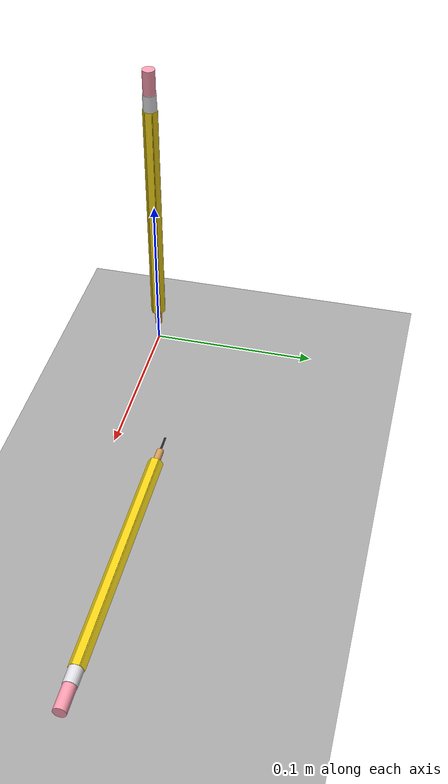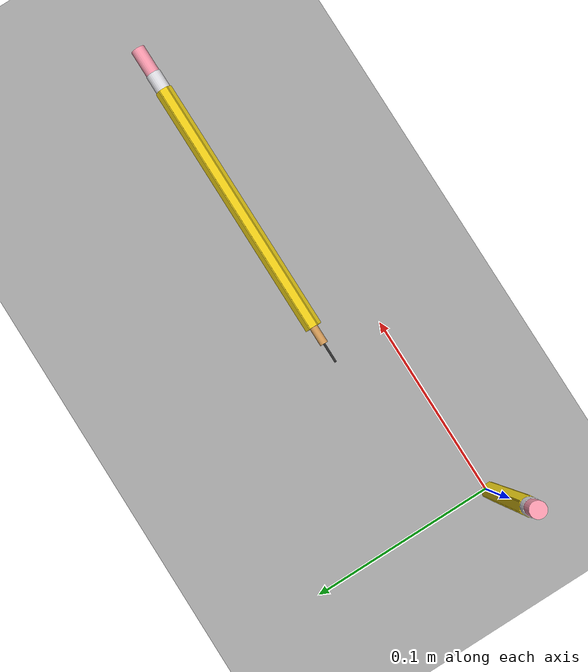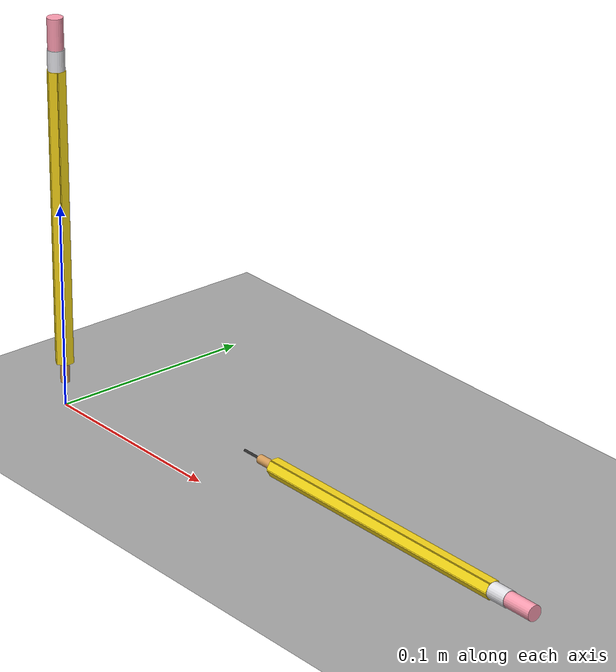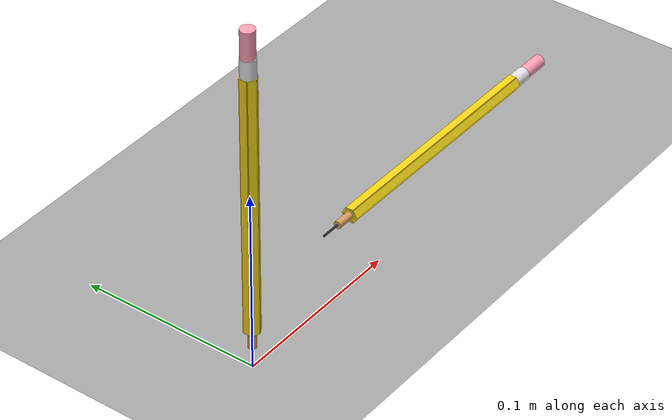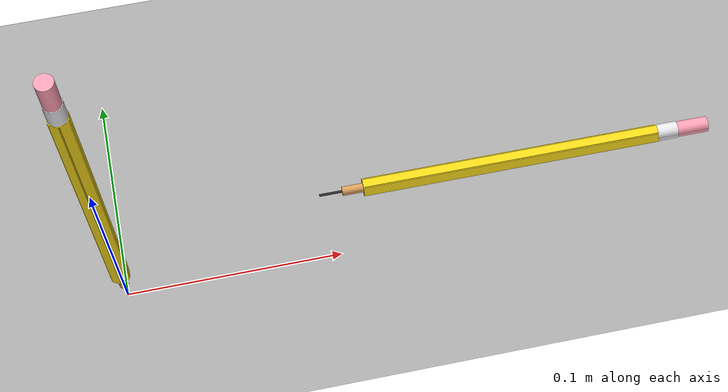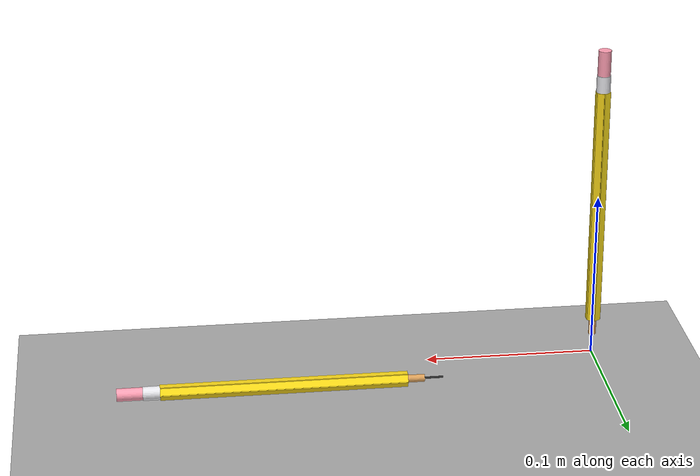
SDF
<?xml version="1.0" ?>
<sdf version="1.9">
  <world name="pencil_world">

    <!-- ── Required system plugins for gz sim ── -->
    <plugin filename="gz-sim-physics-system"
            name="gz::sim::systems::Physics"/>

    <plugin filename="gz-sim-user-commands-system"
            name="gz::sim::systems::UserCommands"/>

    <plugin filename="gz-sim-scene-broadcaster-system"
            name="gz::sim::systems::SceneBroadcaster"/>

    <!-- ── GUI plugins ── -->
    <gui fullscreen="false">
      <plugin filename="MinimalScene" name="3D View">
        <gz-gui>
          <title>3D View</title>
          <property type="bool" key="showTitleBar">false</property>
          <property type="string" key="state">docked</property>
        </gz-gui>
        <engine>ogre2</engine>
        <scene>scene</scene>
        <ambient_light>0.4 0.4 0.4</ambient_light>
        <background_color>0.27 0.27 0.27</background_color>
        <!-- Camera positioned to view a pencil nicely -->
        <camera_pose>0.0 -0.25 0.12 0 0.4 1.5708</camera_pose>
        <camera_clip>
          <near>0.001</near>
          <far>1000</far>
        </camera_clip>
      </plugin>

      <plugin filename="GzSceneManager" name="Scene Manager">
        <gz-gui>
          <property key="resizable" type="bool">false</property>
          <property key="width" type="double">5</property>
          <property key="height" type="double">5</property>
          <property key="state" type="string">floating</property>
          <property key="showTitleBar" type="bool">false</property>
        </gz-gui>
      </plugin>

      <plugin filename="InteractiveViewControl" name="Interactive view control">
        <gz-gui>
          <property key="resizable" type="bool">false</property>
          <property key="width" type="double">5</property>
          <property key="height" type="double">5</property>
          <property key="state" type="string">floating</property>
          <property key="showTitleBar" type="bool">false</property>
        </gz-gui>
      </plugin>

      <plugin filename="EntityContextMenuPlugin" name="Entity context menu">
        <gz-gui>
          <property key="state" type="string">floating</property>
          <property key="width" type="double">5</property>
          <property key="height" type="double">5</property>
          <property key="showTitleBar" type="bool">false</property>
        </gz-gui>
      </plugin>

      <plugin filename="WorldControl" name="World control">
        <gz-gui>
          <title>World control</title>
          <property type="bool" key="showTitleBar">false</property>
          <property type="bool" key="resizable">false</property>
          <property type="double" key="height">72</property>
          <property type="string" key="state">floating</property>
          <property type="bool" key="showCloseButton">false</property>
          <property type="bool" key="showDockButton">false</property>
        </gz-gui>
        <play_pause>true</play_pause>
        <step>true</step>
        <start_paused>true</start_paused>
      </plugin>
    </gui>

    <!-- ── Physics ── -->
    <physics name="1ms" type="ignored">
      <max_step_size>0.001</max_step_size>
      <real_time_factor>1.0</real_time_factor>
    </physics>

    <!-- ── Scene lighting ── -->
    <scene>
      <ambient>0.4 0.4 0.4 1</ambient>
      <background>0.27 0.27 0.27 1</background>
      <shadows>true</shadows>
    </scene>

    <light type="directional" name="sun">
      <cast_shadows>true</cast_shadows>
      <pose>0 0 10 0 0 0</pose>
      <diffuse>0.8 0.8 0.8 1</diffuse>
      <specular>0.4 0.4 0.4 1</specular>
      <direction>-0.5 0.1 -0.9</direction>
      <attenuation>
        <range>1000</range>
        <constant>0.9</constant>
        <linear>0.01</linear>
        <quadratic>0.001</quadratic>
      </attenuation>
    </light>

    <!-- ── Ground plane ── -->
    <model name="ground_plane">
      <static>true</static>
      <link name="link">
        <collision name="collision">
          <geometry>
            <plane><normal>0 0 1</normal><size>100 100</size></plane>
          </geometry>
        </collision>
        <visual name="visual">
          <geometry>
            <plane><normal>0 0 1</normal><size>100 100</size></plane>
          </geometry>
          <material>
            <ambient>0.55 0.55 0.55 1</ambient>
            <diffuse>0.65 0.65 0.65 1</diffuse>
            <specular>0.1 0.1 0.1 1</specular>
          </material>
        </visual>
      </link>
    </model>

    <!-- ── Pencil 1: standing upright, tip resting on ground ── -->
    <include>
      <uri>model://pencil</uri>
      <name>pencil_upright</name>
      <!-- tip at z=0 → raise 1 mm so it sits on the ground cleanly -->
      <pose>0 0 0.001 0 0 0</pose>
    </include>

    <!-- ── Pencil 2: lying on its side along X-axis ── -->
    <include>
      <uri>model://pencil</uri>
      <name>pencil_lying</name>
      <pose>0.095 0.03 0.0040 0 1.5708 0</pose>
    </include>

  </world>
</sdf>

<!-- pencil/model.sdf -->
<sdf version="1.9">
  <model name="pencil">

    <!-- Static prop — change to false for physics simulation -->
    <static>false</static>

    <link name="base_link">
      <pose>0 0 0 0 0 0</pose>

      <inertial>
        <mass>0.01</mass>
        <inertia>
          <ixx>3e-6</ixx><ixy>0</ixy><ixz>0</ixz>
          <iyy>3e-6</iyy><iyz>0</iyz>
          <izz>1e-7</izz>
        </inertia>
      </inertial>

      <!-- ══════════════════════════════════════════
           GRAPHITE TIP  z = 0 → 0.015
           Thin dark-grey cylinder (graphite)
      ══════════════════════════════════════════ -->
      <visual name="tip_graphite">
        <pose>0 0 0.0055 0 0 0</pose>
        <geometry>
          <cylinder>
            <radius>0.0006</radius>
            <length>0.011</length>
          </cylinder>
        </geometry>
        <material>
          <ambient>0.18 0.18 0.18 1</ambient>
          <diffuse>0.18 0.18 0.18 1</diffuse>
          <specular>0.5 0.5 0.5 1</specular>
        </material>
      </visual>

      <!-- ══════════════════════════════════════════
           WOOD SHEATH  z = 0.011 → 0.021
           Slightly wider section — exposed bare wood
      ══════════════════════════════════════════ -->
      <visual name="tip_wood">
        <pose>0 0 0.016 0 0 0</pose>
        <geometry>
          <cylinder>
            <radius>0.0022</radius>
            <length>0.010</length>
          </cylinder>
        </geometry>
        <material>
          <ambient>0.72 0.50 0.28 1</ambient>
          <diffuse>0.85 0.62 0.35 1</diffuse>
          <specular>0.08 0.06 0.04 1</specular>
        </material>
      </visual>

      <!-- Tip collision covers both graphite + wood sheath -->
      <collision name="tip_col">
        <pose>0 0 0.0105 0 0 0</pose>
        <geometry>
          <cylinder>
            <radius>0.0022</radius>
            <length>0.021</length>
          </cylinder>
        </geometry>
      </collision>

      <!-- Inner fill cylinder — ensures no visible gap between panels -->
      <visual name="body_fill">
        <pose>0 0 0.093 0 0 0</pose>
        <geometry>
          <cylinder>
            <radius>0.00340</radius>
            <length>0.144</length>
          </cylinder>
        </geometry>
        <material>
          <ambient>0.95 0.82 0.08 1</ambient>
          <diffuse>1.00 0.88 0.10 1</diffuse>
          <specular>0.30 0.25 0.03 1</specular>
        </material>
      </visual>

      <!-- Panel 0 — 0° (faces +X) -->
      <visual name="body_p0">
        <pose>0.0035 0 0.093  0 0 0</pose>
        <geometry><box><size>0.0012 0.004041 0.144</size></box></geometry>
        <material>
          <ambient>0.95 0.82 0.08 1</ambient>
          <diffuse>1.00 0.88 0.10 1</diffuse>
          <specular>0.35 0.30 0.04 1</specular>
        </material>
      </visual>
      <collision name="body_p0_col">
        <pose>0.0035 0 0.093  0 0 0</pose>
        <geometry><box><size>0.0012 0.004041 0.144</size></box></geometry>
      </collision>

      <!-- Panel 1 — 60° -->
      <visual name="body_p1">
        <pose>0.001750 0.003031 0.093  0 0 1.047198</pose>
        <geometry><box><size>0.0012 0.004041 0.144</size></box></geometry>
        <material>
          <ambient>0.90 0.77 0.07 1</ambient>
          <diffuse>0.96 0.83 0.09 1</diffuse>
          <specular>0.35 0.30 0.04 1</specular>
        </material>
      </visual>
      <collision name="body_p1_col">
        <pose>0.001750 0.003031 0.093  0 0 1.047198</pose>
        <geometry><box><size>0.0012 0.004041 0.144</size></box></geometry>
      </collision>

      <!-- Panel 2 — 120° -->
      <visual name="body_p2">
        <pose>-0.001750 0.003031 0.093  0 0 2.094395</pose>
        <geometry><box><size>0.0012 0.004041 0.144</size></box></geometry>
        <material>
          <ambient>0.95 0.82 0.08 1</ambient>
          <diffuse>1.00 0.88 0.10 1</diffuse>
          <specular>0.35 0.30 0.04 1</specular>
        </material>
      </visual>
      <collision name="body_p2_col">
        <pose>-0.001750 0.003031 0.093  0 0 2.094395</pose>
        <geometry><box><size>0.0012 0.004041 0.144</size></box></geometry>
      </collision>

      <!-- Panel 3 — 180° (faces -X) -->
      <visual name="body_p3">
        <pose>-0.0035 0 0.093  0 0 3.141593</pose>
        <geometry><box><size>0.0012 0.004041 0.144</size></box></geometry>
        <material>
          <ambient>0.90 0.77 0.07 1</ambient>
          <diffuse>0.96 0.83 0.09 1</diffuse>
          <specular>0.35 0.30 0.04 1</specular>
        </material>
      </visual>
      <collision name="body_p3_col">
        <pose>-0.0035 0 0.093  0 0 3.141593</pose>
        <geometry><box><size>0.0012 0.004041 0.144</size></box></geometry>
      </collision>

      <!-- Panel 4 — 240° -->
      <visual name="body_p4">
        <pose>-0.001750 -0.003031 0.093  0 0 4.188790</pose>
        <geometry><box><size>0.0012 0.004041 0.144</size></box></geometry>
        <material>
          <ambient>0.95 0.82 0.08 1</ambient>
          <diffuse>1.00 0.88 0.10 1</diffuse>
          <specular>0.35 0.30 0.04 1</specular>
        </material>
      </visual>
      <collision name="body_p4_col">
        <pose>-0.001750 -0.003031 0.093  0 0 4.188790</pose>
        <geometry><box><size>0.0012 0.004041 0.144</size></box></geometry>
      </collision>

      <!-- Panel 5 — 300° -->
      <visual name="body_p5">
        <pose>0.001750 -0.003031 0.093  0 0 5.235988</pose>
        <geometry><box><size>0.0012 0.004041 0.144</size></box></geometry>
        <material>
          <ambient>0.90 0.77 0.07 1</ambient>
          <diffuse>0.96 0.83 0.09 1</diffuse>
          <specular>0.35 0.30 0.04 1</specular>
        </material>
      </visual>
      <collision name="body_p5_col">
        <pose>0.001750 -0.003031 0.093  0 0 5.235988</pose>
        <geometry><box><size>0.0012 0.004041 0.144</size></box></geometry>
      </collision>

      <!-- ══════════════════════════════════════════
           FERRULE  z = 0.165 → 0.175   (silver band)
           Centre z = 0.170
      ══════════════════════════════════════════ -->
      <visual name="ferrule">
        <pose>0 0 0.170 0 0 0</pose>
        <geometry>
          <cylinder>
            <radius>0.00405</radius>
            <length>0.010</length>
          </cylinder>
        </geometry>
        <material>
          <!-- Bright metallic silver for Ogre2 -->
          <ambient>0.80 0.80 0.82 1</ambient>
          <diffuse>0.90 0.90 0.92 1</diffuse>
          <specular>1.00 1.00 1.00 1</specular>
          <emissive>0.03 0.03 0.03 1</emissive>
        </material>
      </visual>
      <collision name="ferrule_col">
        <pose>0 0 0.170 0 0 0</pose>
        <geometry>
          <cylinder>
            <radius>0.00405</radius>
            <length>0.010</length>
          </cylinder>
        </geometry>
      </collision>

      <!-- ══════════════════════════════════════════
           ERASER  z = 0.175 → 0.190   (pink rubber)
           Centre z = 0.1825
      ══════════════════════════════════════════ -->
      <visual name="eraser">
        <pose>0 0 0.1825 0 0 0</pose>
        <geometry>
          <cylinder>
            <radius>0.00375</radius>
            <length>0.015</length>
          </cylinder>
        </geometry>
        <material>
          <!-- Bright pink — boosted for Ogre2 PBR pipeline -->
          <ambient>0.92 0.52 0.60 1</ambient>
          <diffuse>1.00 0.62 0.70 1</diffuse>
          <specular>0.15 0.08 0.10 1</specular>
        </material>
      </visual>
      <collision name="eraser_col">
        <pose>0 0 0.1825 0 0 0</pose>
        <geometry>
          <cylinder>
            <radius>0.00375</radius>
            <length>0.015</length>
          </cylinder>
        </geometry>
      </collision>

    </link>

  </model>
</sdf>
